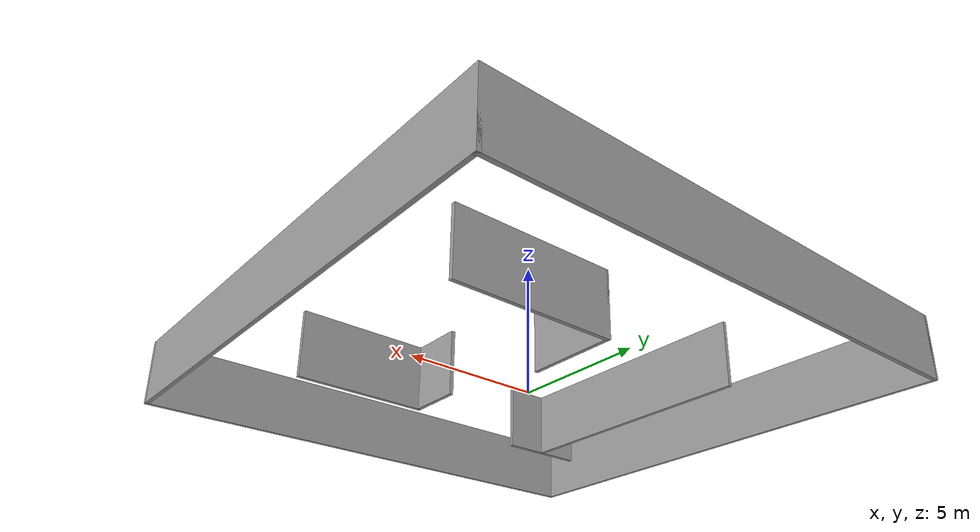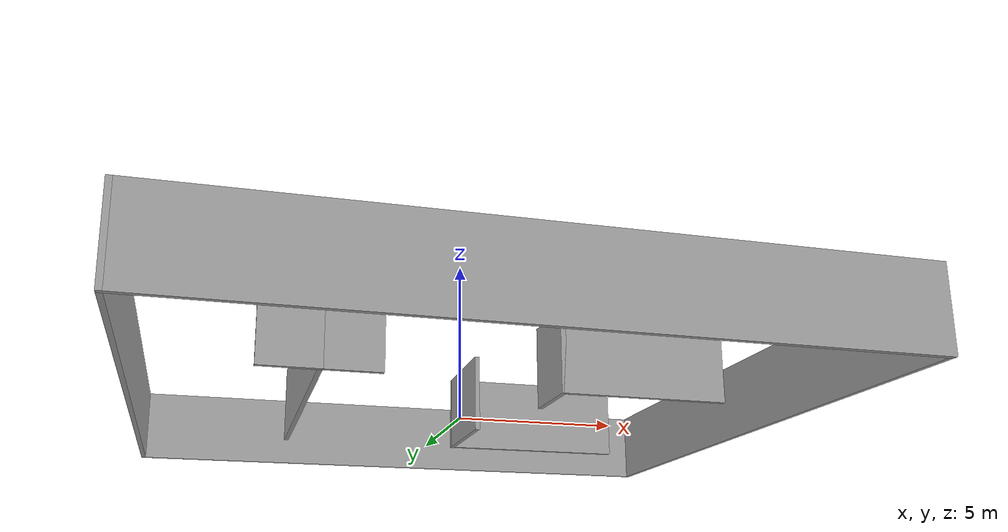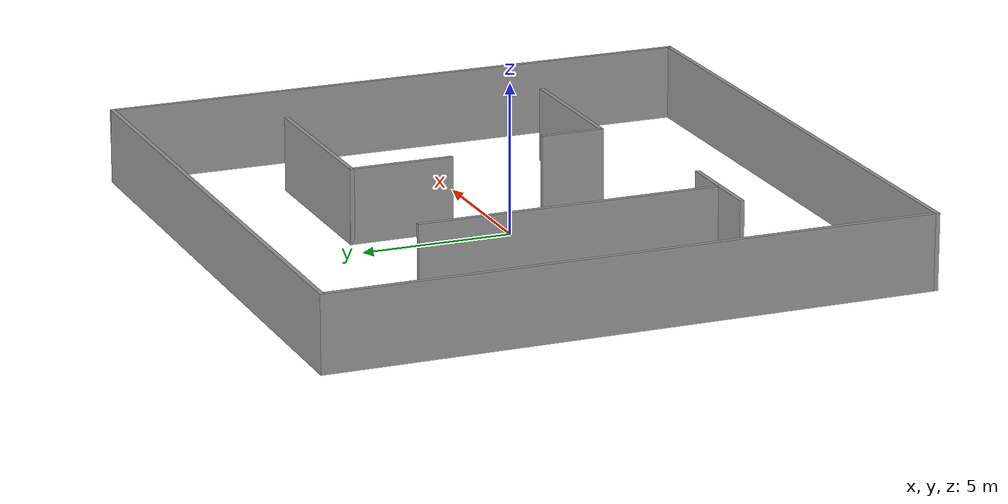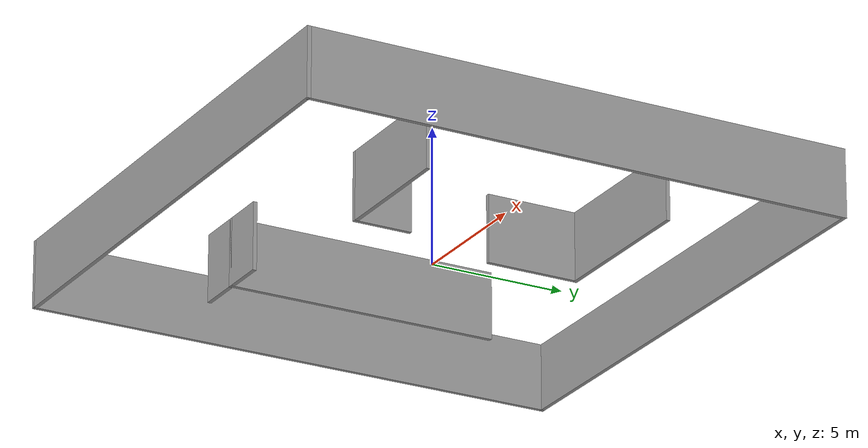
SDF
<?xml version='1.0'?>
<sdf version='1.7'>
  <model name='simple_maze'>
    <link name='Wall_0'>
      <pose>0 10 0 0 -0 0</pose>
      <self_collide>0</self_collide>
      <enable_wind>0</enable_wind>
      <kinematic>0</kinematic>
      <visual name='Wall_0_Visual'>
        <pose>0 0 1.25 0 -0 0</pose>
        <geometry>
          <box>
            <size>20.15 0.15 2.5</size>
          </box>
        </geometry>
        <material>
          <script>
            <uri>file://media/materials/scripts/gazebo.material</uri>
            <name>Gazebo/Grey</name>
          </script>
          <ambient>1 1 1 1</ambient>
          <shader type='pixel'/>
        </material>
        <meta>
          <layer>0</layer>
        </meta>
        <transparency>0</transparency>
        <cast_shadows>1</cast_shadows>
      </visual>
      <collision name='Wall_0_Collision'>
        <laser_retro>0</laser_retro>
        <max_contacts>10</max_contacts>
        <pose>0 0 1.25 0 -0 0</pose>
        <geometry>
          <box>
            <size>20.15 0.15 2.5</size>
          </box>
        </geometry>
        <surface>
          <friction>
            <ode>
              <mu>1</mu>
              <mu2>1</mu2>
              <fdir1>0 0 0</fdir1>
              <slip1>0</slip1>
              <slip2>0</slip2>
            </ode>
            <torsional>
              <coefficient>1</coefficient>
              <patch_radius>0</patch_radius>
              <surface_radius>0</surface_radius>
              <use_patch_radius>1</use_patch_radius>
              <ode>
                <slip>0</slip>
              </ode>
            </torsional>
          </friction>
          <bounce>
            <restitution_coefficient>0</restitution_coefficient>
            <threshold>1e+06</threshold>
          </bounce>
          <contact>
            <collide_without_contact>0</collide_without_contact>
            <collide_without_contact_bitmask>1</collide_without_contact_bitmask>
            <collide_bitmask>1</collide_bitmask>
            <ode>
              <soft_cfm>0</soft_cfm>
              <soft_erp>0.2</soft_erp>
              <kp>1e+13</kp>
              <kd>1</kd>
              <max_vel>0.01</max_vel>
              <min_depth>0</min_depth>
            </ode>
            <bullet>
              <split_impulse>1</split_impulse>
              <split_impulse_penetration_threshold>-0.01</split_impulse_penetration_threshold>
              <soft_cfm>0</soft_cfm>
              <soft_erp>0.2</soft_erp>
              <kp>1e+13</kp>
              <kd>1</kd>
            </bullet>
          </contact>
        </surface>
      </collision>
    </link>
    <link name='Wall_1'>
      <pose>10 0 0 0 0 -1.5708</pose>
      <self_collide>0</self_collide>
      <enable_wind>0</enable_wind>
      <kinematic>0</kinematic>
      <visual name='Wall_1_Visual'>
        <pose>0 0 1.25 0 -0 0</pose>
        <geometry>
          <box>
            <size>20.15 0.15 2.5</size>
          </box>
        </geometry>
        <material>
          <script>
            <uri>file://media/materials/scripts/gazebo.material</uri>
            <name>Gazebo/Grey</name>
          </script>
          <ambient>1 1 1 1</ambient>
          <shader type='pixel'/>
        </material>
        <meta>
          <layer>0</layer>
        </meta>
        <transparency>0</transparency>
        <cast_shadows>1</cast_shadows>
      </visual>
      <collision name='Wall_1_Collision'>
        <laser_retro>0</laser_retro>
        <max_contacts>10</max_contacts>
        <pose>0 0 1.25 0 -0 0</pose>
        <geometry>
          <box>
            <size>20.15 0.15 2.5</size>
          </box>
        </geometry>
        <surface>
          <friction>
            <ode>
              <mu>1</mu>
              <mu2>1</mu2>
              <fdir1>0 0 0</fdir1>
              <slip1>0</slip1>
              <slip2>0</slip2>
            </ode>
            <torsional>
              <coefficient>1</coefficient>
              <patch_radius>0</patch_radius>
              <surface_radius>0</surface_radius>
              <use_patch_radius>1</use_patch_radius>
              <ode>
                <slip>0</slip>
              </ode>
            </torsional>
          </friction>
          <bounce>
            <restitution_coefficient>0</restitution_coefficient>
            <threshold>1e+06</threshold>
          </bounce>
          <contact>
            <collide_without_contact>0</collide_without_contact>
            <collide_without_contact_bitmask>1</collide_without_contact_bitmask>
            <collide_bitmask>1</collide_bitmask>
            <ode>
              <soft_cfm>0</soft_cfm>
              <soft_erp>0.2</soft_erp>
              <kp>1e+13</kp>
              <kd>1</kd>
              <max_vel>0.01</max_vel>
              <min_depth>0</min_depth>
            </ode>
            <bullet>
              <split_impulse>1</split_impulse>
              <split_impulse_penetration_threshold>-0.01</split_impulse_penetration_threshold>
              <soft_cfm>0</soft_cfm>
              <soft_erp>0.2</soft_erp>
              <kp>1e+13</kp>
              <kd>1</kd>
            </bullet>
          </contact>
        </surface>
      </collision>
    </link>
    <link name='Wall_11'>
      <pose>4.5 -4 0 0 -0 0</pose>
      <self_collide>0</self_collide>
      <enable_wind>0</enable_wind>
      <kinematic>0</kinematic>
      <gravity>1</gravity>
      <inertial>
        <mass>1</mass>
        <pose>0 0 0 0 -0 0</pose>
        <inertia>
          <ixx>1</ixx>
          <ixy>0</ixy>
          <ixz>0</ixz>
          <iyy>1</iyy>
          <iyz>0</iyz>
          <izz>1</izz>
        </inertia>
      </inertial>
      <visual name='Wall_11_Visual'>
        <pose>0 0 1.25 0 -0 0</pose>
        <geometry>
          <box>
            <size>5 0.15 2.5</size>
          </box>
        </geometry>
        <material>
          <script>
            <uri>file://media/materials/scripts/gazebo.material</uri>
            <name>Gazebo/Grey</name>
          </script>
          <ambient>1 1 1 1</ambient>
          <shader type='pixel'>
            <normal_map>__default__</normal_map>
          </shader>
          <diffuse>0.7 0.7 0.7 1</diffuse>
          <specular>0.01 0.01 0.01 1</specular>
          <emissive>0 0 0 1</emissive>
        </material>
        <meta>
          <layer>0</layer>
        </meta>
        <transparency>0</transparency>
        <cast_shadows>1</cast_shadows>
      </visual>
      <collision name='Wall_11_Collision'>
        <laser_retro>0</laser_retro>
        <max_contacts>10</max_contacts>
        <pose>0 0 1.25 0 -0 0</pose>
        <geometry>
          <box>
            <size>5 0.15 2.5</size>
          </box>
        </geometry>
        <surface>
          <friction>
            <ode>
              <mu>1</mu>
              <mu2>1</mu2>
              <fdir1>0 0 0</fdir1>
              <slip1>0</slip1>
              <slip2>0</slip2>
            </ode>
            <torsional>
              <coefficient>1</coefficient>
              <patch_radius>0</patch_radius>
              <surface_radius>0</surface_radius>
              <use_patch_radius>1</use_patch_radius>
              <ode>
                <slip>0</slip>
              </ode>
            </torsional>
          </friction>
          <bounce>
            <restitution_coefficient>0</restitution_coefficient>
            <threshold>1e+06</threshold>
          </bounce>
          <contact>
            <collide_without_contact>0</collide_without_contact>
            <collide_without_contact_bitmask>1</collide_without_contact_bitmask>
            <collide_bitmask>1</collide_bitmask>
            <ode>
              <soft_cfm>0</soft_cfm>
              <soft_erp>0.2</soft_erp>
              <kp>1e+13</kp>
              <kd>1</kd>
              <max_vel>0.01</max_vel>
              <min_depth>0</min_depth>
            </ode>
            <bullet>
              <split_impulse>1</split_impulse>
              <split_impulse_penetration_threshold>-0.01</split_impulse_penetration_threshold>
              <soft_cfm>0</soft_cfm>
              <soft_erp>0.2</soft_erp>
              <kp>1e+13</kp>
              <kd>1</kd>
            </bullet>
          </contact>
        </surface>
      </collision>
    </link>
    <link name='Wall_13'>
      <pose>1 3.325 0 0 0 -1.5708</pose>
      <self_collide>0</self_collide>
      <enable_wind>0</enable_wind>
      <kinematic>0</kinematic>
      <visual name='Wall_13_Visual'>
        <pose>0 0 1.25 0 -0 0</pose>
        <geometry>
          <box>
            <size>3.5 0.15 2.5</size>
          </box>
        </geometry>
        <material>
          <script>
            <uri>file://media/materials/scripts/gazebo.material</uri>
            <name>Gazebo/Grey</name>
          </script>
          <ambient>1 1 1 1</ambient>
          <shader type='pixel'/>
        </material>
        <meta>
          <layer>0</layer>
        </meta>
        <transparency>0</transparency>
        <cast_shadows>1</cast_shadows>
      </visual>
      <collision name='Wall_13_Collision'>
        <laser_retro>0</laser_retro>
        <max_contacts>10</max_contacts>
        <pose>0 0 1.25 0 -0 0</pose>
        <geometry>
          <box>
            <size>3.5 0.15 2.5</size>
          </box>
        </geometry>
        <surface>
          <friction>
            <ode>
              <mu>1</mu>
              <mu2>1</mu2>
              <fdir1>0 0 0</fdir1>
              <slip1>0</slip1>
              <slip2>0</slip2>
            </ode>
            <torsional>
              <coefficient>1</coefficient>
              <patch_radius>0</patch_radius>
              <surface_radius>0</surface_radius>
              <use_patch_radius>1</use_patch_radius>
              <ode>
                <slip>0</slip>
              </ode>
            </torsional>
          </friction>
          <bounce>
            <restitution_coefficient>0</restitution_coefficient>
            <threshold>1e+06</threshold>
          </bounce>
          <contact>
            <collide_without_contact>0</collide_without_contact>
            <collide_without_contact_bitmask>1</collide_without_contact_bitmask>
            <collide_bitmask>1</collide_bitmask>
            <ode>
              <soft_cfm>0</soft_cfm>
              <soft_erp>0.2</soft_erp>
              <kp>1e+13</kp>
              <kd>1</kd>
              <max_vel>0.01</max_vel>
              <min_depth>0</min_depth>
            </ode>
            <bullet>
              <split_impulse>1</split_impulse>
              <split_impulse_penetration_threshold>-0.01</split_impulse_penetration_threshold>
              <soft_cfm>0</soft_cfm>
              <soft_erp>0.2</soft_erp>
              <kp>1e+13</kp>
              <kd>1</kd>
            </bullet>
          </contact>
        </surface>
      </collision>
    </link>
    <link name='Wall_15'>
      <pose>-4.2 -5 0 0 -0 0</pose>
      <self_collide>0</self_collide>
      <enable_wind>0</enable_wind>
      <kinematic>0</kinematic>
      <visual name='Wall_15_Visual'>
        <pose>0 0 1.25 0 -0 0</pose>
        <geometry>
          <box>
            <size>1.75 0.15 2.5</size>
          </box>
        </geometry>
        <material>
          <script>
            <uri>file://media/materials/scripts/gazebo.material</uri>
            <name>Gazebo/Grey</name>
          </script>
          <ambient>1 1 1 1</ambient>
          <shader type='pixel'/>
        </material>
        <meta>
          <layer>0</layer>
        </meta>
        <transparency>0</transparency>
        <cast_shadows>1</cast_shadows>
      </visual>
      <collision name='Wall_15_Collision'>
        <laser_retro>0</laser_retro>
        <max_contacts>10</max_contacts>
        <pose>0 0 1.25 0 -0 0</pose>
        <geometry>
          <box>
            <size>1.75 0.15 2.5</size>
          </box>
        </geometry>
        <surface>
          <friction>
            <ode>
              <mu>1</mu>
              <mu2>1</mu2>
              <fdir1>0 0 0</fdir1>
              <slip1>0</slip1>
              <slip2>0</slip2>
            </ode>
            <torsional>
              <coefficient>1</coefficient>
              <patch_radius>0</patch_radius>
              <surface_radius>0</surface_radius>
              <use_patch_radius>1</use_patch_radius>
              <ode>
                <slip>0</slip>
              </ode>
            </torsional>
          </friction>
          <bounce>
            <restitution_coefficient>0</restitution_coefficient>
            <threshold>1e+06</threshold>
          </bounce>
          <contact>
            <collide_without_contact>0</collide_without_contact>
            <collide_without_contact_bitmask>1</collide_without_contact_bitmask>
            <collide_bitmask>1</collide_bitmask>
            <ode>
              <soft_cfm>0</soft_cfm>
              <soft_erp>0.2</soft_erp>
              <kp>1e+13</kp>
              <kd>1</kd>
              <max_vel>0.01</max_vel>
              <min_depth>0</min_depth>
            </ode>
            <bullet>
              <split_impulse>1</split_impulse>
              <split_impulse_penetration_threshold>-0.01</split_impulse_penetration_threshold>
              <soft_cfm>0</soft_cfm>
              <soft_erp>0.2</soft_erp>
              <kp>1e+13</kp>
              <kd>1</kd>
            </bullet>
          </contact>
        </surface>
      </collision>
    </link>
    <link name='Wall_17'>
      <pose>-5.8 -5 0 0 -0 3.14159</pose>
      <self_collide>0</self_collide>
      <enable_wind>0</enable_wind>
      <kinematic>0</kinematic>
      <visual name='Wall_17_Visual'>
        <pose>0 0 1.25 0 -0 0</pose>
        <geometry>
          <box>
            <size>1.75 0.15 2.5</size>
          </box>
        </geometry>
        <material>
          <script>
            <uri>file://media/materials/scripts/gazebo.material</uri>
            <name>Gazebo/Grey</name>
          </script>
          <ambient>1 1 1 1</ambient>
          <shader type='pixel'/>
        </material>
        <meta>
          <layer>0</layer>
        </meta>
        <transparency>0</transparency>
        <cast_shadows>1</cast_shadows>
      </visual>
      <collision name='Wall_17_Collision'>
        <laser_retro>0</laser_retro>
        <max_contacts>10</max_contacts>
        <pose>0 0 1.25 0 -0 0</pose>
        <geometry>
          <box>
            <size>1.75 0.15 2.5</size>
          </box>
        </geometry>
        <surface>
          <friction>
            <ode>
              <mu>1</mu>
              <mu2>1</mu2>
              <fdir1>0 0 0</fdir1>
              <slip1>0</slip1>
              <slip2>0</slip2>
            </ode>
            <torsional>
              <coefficient>1</coefficient>
              <patch_radius>0</patch_radius>
              <surface_radius>0</surface_radius>
              <use_patch_radius>1</use_patch_radius>
              <ode>
                <slip>0</slip>
              </ode>
            </torsional>
          </friction>
          <bounce>
            <restitution_coefficient>0</restitution_coefficient>
            <threshold>1e+06</threshold>
          </bounce>
          <contact>
            <collide_without_contact>0</collide_without_contact>
            <collide_without_contact_bitmask>1</collide_without_contact_bitmask>
            <collide_bitmask>1</collide_bitmask>
            <ode>
              <soft_cfm>0</soft_cfm>
              <soft_erp>0.2</soft_erp>
              <kp>1e+13</kp>
              <kd>1</kd>
              <max_vel>0.01</max_vel>
              <min_depth>0</min_depth>
            </ode>
            <bullet>
              <split_impulse>1</split_impulse>
              <split_impulse_penetration_threshold>-0.01</split_impulse_penetration_threshold>
              <soft_cfm>0</soft_cfm>
              <soft_erp>0.2</soft_erp>
              <kp>1e+13</kp>
              <kd>1</kd>
            </bullet>
          </contact>
        </surface>
      </collision>
    </link>
    <link name='Wall_2'>
      <pose>0 -10 0 0 -0 3.14159</pose>
      <self_collide>0</self_collide>
      <enable_wind>0</enable_wind>
      <kinematic>0</kinematic>
      <visual name='Wall_2_Visual'>
        <pose>0 0 1.25 0 -0 0</pose>
        <geometry>
          <box>
            <size>20.15 0.15 2.5</size>
          </box>
        </geometry>
        <material>
          <script>
            <uri>file://media/materials/scripts/gazebo.material</uri>
            <name>Gazebo/Grey</name>
          </script>
          <ambient>1 1 1 1</ambient>
          <shader type='pixel'/>
        </material>
        <meta>
          <layer>0</layer>
        </meta>
        <transparency>0</transparency>
        <cast_shadows>1</cast_shadows>
      </visual>
      <collision name='Wall_2_Collision'>
        <laser_retro>0</laser_retro>
        <max_contacts>10</max_contacts>
        <pose>0 0 1.25 0 -0 0</pose>
        <geometry>
          <box>
            <size>20.15 0.15 2.5</size>
          </box>
        </geometry>
        <surface>
          <friction>
            <ode>
              <mu>1</mu>
              <mu2>1</mu2>
              <fdir1>0 0 0</fdir1>
              <slip1>0</slip1>
              <slip2>0</slip2>
            </ode>
            <torsional>
              <coefficient>1</coefficient>
              <patch_radius>0</patch_radius>
              <surface_radius>0</surface_radius>
              <use_patch_radius>1</use_patch_radius>
              <ode>
                <slip>0</slip>
              </ode>
            </torsional>
          </friction>
          <bounce>
            <restitution_coefficient>0</restitution_coefficient>
            <threshold>1e+06</threshold>
          </bounce>
          <contact>
            <collide_without_contact>0</collide_without_contact>
            <collide_without_contact_bitmask>1</collide_without_contact_bitmask>
            <collide_bitmask>1</collide_bitmask>
            <ode>
              <soft_cfm>0</soft_cfm>
              <soft_erp>0.2</soft_erp>
              <kp>1e+13</kp>
              <kd>1</kd>
              <max_vel>0.01</max_vel>
              <min_depth>0</min_depth>
            </ode>
            <bullet>
              <split_impulse>1</split_impulse>
              <split_impulse_penetration_threshold>-0.01</split_impulse_penetration_threshold>
              <soft_cfm>0</soft_cfm>
              <soft_erp>0.2</soft_erp>
              <kp>1e+13</kp>
              <kd>1</kd>
            </bullet>
          </contact>
        </surface>
      </collision>
    </link>
    <link name='Wall_3'>
      <pose>-10 0 0 0 -0 1.5708</pose>
      <self_collide>0</self_collide>
      <enable_wind>0</enable_wind>
      <kinematic>0</kinematic>
      <visual name='Wall_3_Visual'>
        <pose>0 0 1.25 0 -0 0</pose>
        <geometry>
          <box>
            <size>20.15 0.15 2.5</size>
          </box>
        </geometry>
        <material>
          <script>
            <uri>file://media/materials/scripts/gazebo.material</uri>
            <name>Gazebo/Grey</name>
          </script>
          <ambient>1 1 1 1</ambient>
          <shader type='pixel'/>
        </material>
        <meta>
          <layer>0</layer>
        </meta>
        <transparency>0</transparency>
        <cast_shadows>1</cast_shadows>
      </visual>
      <collision name='Wall_3_Collision'>
        <laser_retro>0</laser_retro>
        <max_contacts>10</max_contacts>
        <pose>0 0 1.25 0 -0 0</pose>
        <geometry>
          <box>
            <size>20.15 0.15 2.5</size>
          </box>
        </geometry>
        <surface>
          <friction>
            <ode>
              <mu>1</mu>
              <mu2>1</mu2>
              <fdir1>0 0 0</fdir1>
              <slip1>0</slip1>
              <slip2>0</slip2>
            </ode>
            <torsional>
              <coefficient>1</coefficient>
              <patch_radius>0</patch_radius>
              <surface_radius>0</surface_radius>
              <use_patch_radius>1</use_patch_radius>
              <ode>
                <slip>0</slip>
              </ode>
            </torsional>
          </friction>
          <bounce>
            <restitution_coefficient>0</restitution_coefficient>
            <threshold>1e+06</threshold>
          </bounce>
          <contact>
            <collide_without_contact>0</collide_without_contact>
            <collide_without_contact_bitmask>1</collide_without_contact_bitmask>
            <collide_bitmask>1</collide_bitmask>
            <ode>
              <soft_cfm>0</soft_cfm>
              <soft_erp>0.2</soft_erp>
              <kp>1e+13</kp>
              <kd>1</kd>
              <max_vel>0.01</max_vel>
              <min_depth>0</min_depth>
            </ode>
            <bullet>
              <split_impulse>1</split_impulse>
              <split_impulse_penetration_threshold>-0.01</split_impulse_penetration_threshold>
              <soft_cfm>0</soft_cfm>
              <soft_erp>0.2</soft_erp>
              <kp>1e+13</kp>
              <kd>1</kd>
            </bullet>
          </contact>
        </surface>
      </collision>
    </link>
    <link name='Wall_5'>
      <pose>-5 0 0 0 0 -1.5708</pose>
      <self_collide>0</self_collide>
      <enable_wind>0</enable_wind>
      <kinematic>0</kinematic>
      <visual name='Wall_5_Visual'>
        <pose>0 0 1.25 0 -0 0</pose>
        <geometry>
          <box>
            <size>10.15 0.15 2.5</size>
          </box>
        </geometry>
        <material>
          <script>
            <uri>file://media/materials/scripts/gazebo.material</uri>
            <name>Gazebo/Grey</name>
          </script>
          <ambient>1 1 1 1</ambient>
          <shader type='pixel'/>
        </material>
        <meta>
          <layer>0</layer>
        </meta>
        <transparency>0</transparency>
        <cast_shadows>1</cast_shadows>
      </visual>
      <collision name='Wall_5_Collision'>
        <laser_retro>0</laser_retro>
        <max_contacts>10</max_contacts>
        <pose>0 0 1.25 0 -0 0</pose>
        <geometry>
          <box>
            <size>10.15 0.15 2.5</size>
          </box>
        </geometry>
        <surface>
          <friction>
            <ode>
              <mu>1</mu>
              <mu2>1</mu2>
              <fdir1>0 0 0</fdir1>
              <slip1>0</slip1>
              <slip2>0</slip2>
            </ode>
            <torsional>
              <coefficient>1</coefficient>
              <patch_radius>0</patch_radius>
              <surface_radius>0</surface_radius>
              <use_patch_radius>1</use_patch_radius>
              <ode>
                <slip>0</slip>
              </ode>
            </torsional>
          </friction>
          <bounce>
            <restitution_coefficient>0</restitution_coefficient>
            <threshold>1e+06</threshold>
          </bounce>
          <contact>
            <collide_without_contact>0</collide_without_contact>
            <collide_without_contact_bitmask>1</collide_without_contact_bitmask>
            <collide_bitmask>1</collide_bitmask>
            <ode>
              <soft_cfm>0</soft_cfm>
              <soft_erp>0.2</soft_erp>
              <kp>1e+13</kp>
              <kd>1</kd>
              <max_vel>0.01</max_vel>
              <min_depth>0</min_depth>
            </ode>
            <bullet>
              <split_impulse>1</split_impulse>
              <split_impulse_penetration_threshold>-0.01</split_impulse_penetration_threshold>
              <soft_cfm>0</soft_cfm>
              <soft_erp>0.2</soft_erp>
              <kp>1e+13</kp>
              <kd>1</kd>
            </bullet>
          </contact>
        </surface>
      </collision>
    </link>
    <link name='Wall_7'>
      <pose>4 5 0 0 -0 0</pose>
      <self_collide>0</self_collide>
      <enable_wind>0</enable_wind>
      <kinematic>0</kinematic>
      <visual name='Wall_7_Visual'>
        <pose>0 0 1.25 0 -0 0</pose>
        <geometry>
          <box>
            <size>6.15 0.15 2.5</size>
          </box>
        </geometry>
        <material>
          <script>
            <uri>file://media/materials/scripts/gazebo.material</uri>
            <name>Gazebo/Grey</name>
          </script>
          <ambient>1 1 1 1</ambient>
          <shader type='pixel'/>
        </material>
        <meta>
          <layer>0</layer>
        </meta>
        <transparency>0</transparency>
        <cast_shadows>1</cast_shadows>
      </visual>
      <collision name='Wall_7_Collision'>
        <laser_retro>0</laser_retro>
        <max_contacts>10</max_contacts>
        <pose>0 0 1.25 0 -0 0</pose>
        <geometry>
          <box>
            <size>6.15 0.15 2.5</size>
          </box>
        </geometry>
        <surface>
          <friction>
            <ode>
              <mu>1</mu>
              <mu2>1</mu2>
              <fdir1>0 0 0</fdir1>
              <slip1>0</slip1>
              <slip2>0</slip2>
            </ode>
            <torsional>
              <coefficient>1</coefficient>
              <patch_radius>0</patch_radius>
              <surface_radius>0</surface_radius>
              <use_patch_radius>1</use_patch_radius>
              <ode>
                <slip>0</slip>
              </ode>
            </torsional>
          </friction>
          <bounce>
            <restitution_coefficient>0</restitution_coefficient>
            <threshold>1e+06</threshold>
          </bounce>
          <contact>
            <collide_without_contact>0</collide_without_contact>
            <collide_without_contact_bitmask>1</collide_without_contact_bitmask>
            <collide_bitmask>1</collide_bitmask>
            <ode>
              <soft_cfm>0</soft_cfm>
              <soft_erp>0.2</soft_erp>
              <kp>1e+13</kp>
              <kd>1</kd>
              <max_vel>0.01</max_vel>
              <min_depth>0</min_depth>
            </ode>
            <bullet>
              <split_impulse>1</split_impulse>
              <split_impulse_penetration_threshold>-0.01</split_impulse_penetration_threshold>
              <soft_cfm>0</soft_cfm>
              <soft_erp>0.2</soft_erp>
              <kp>1e+13</kp>
              <kd>1</kd>
            </bullet>
          </contact>
        </surface>
      </collision>
    </link>
    <link name='Wall_9'>
      <pose>2.01 -3 0 0 0 -1.5708</pose>
      <self_collide>0</self_collide>
      <enable_wind>0</enable_wind>
      <kinematic>0</kinematic>
      <visual name='Wall_9_Visual'>
        <pose>0 0 1.25 0 -0 0</pose>
        <geometry>
          <box>
            <size>2.15 0.15 2.5</size>
          </box>
        </geometry>
        <material>
          <script>
            <uri>file://media/materials/scripts/gazebo.material</uri>
            <name>Gazebo/Grey</name>
          </script>
          <ambient>1 1 1 1</ambient>
          <shader type='pixel'/>
        </material>
        <meta>
          <layer>0</layer>
        </meta>
        <transparency>0</transparency>
        <cast_shadows>1</cast_shadows>
      </visual>
      <collision name='Wall_9_Collision'>
        <laser_retro>0</laser_retro>
        <max_contacts>10</max_contacts>
        <pose>0 0 1.25 0 -0 0</pose>
        <geometry>
          <box>
            <size>2.15 0.15 2.5</size>
          </box>
        </geometry>
        <surface>
          <friction>
            <ode>
              <mu>1</mu>
              <mu2>1</mu2>
              <fdir1>0 0 0</fdir1>
              <slip1>0</slip1>
              <slip2>0</slip2>
            </ode>
            <torsional>
              <coefficient>1</coefficient>
              <patch_radius>0</patch_radius>
              <surface_radius>0</surface_radius>
              <use_patch_radius>1</use_patch_radius>
              <ode>
                <slip>0</slip>
              </ode>
            </torsional>
          </friction>
          <bounce>
            <restitution_coefficient>0</restitution_coefficient>
            <threshold>1e+06</threshold>
          </bounce>
          <contact>
            <collide_without_contact>0</collide_without_contact>
            <collide_without_contact_bitmask>1</collide_without_contact_bitmask>
            <collide_bitmask>1</collide_bitmask>
            <ode>
              <soft_cfm>0</soft_cfm>
              <soft_erp>0.2</soft_erp>
              <kp>1e+13</kp>
              <kd>1</kd>
              <max_vel>0.01</max_vel>
              <min_depth>0</min_depth>
            </ode>
            <bullet>
              <split_impulse>1</split_impulse>
              <split_impulse_penetration_threshold>-0.01</split_impulse_penetration_threshold>
              <soft_cfm>0</soft_cfm>
              <soft_erp>0.2</soft_erp>
              <kp>1e+13</kp>
              <kd>1</kd>
            </bullet>
          </contact>
        </surface>
      </collision>
    </link>
    <static>1</static>
    <allow_auto_disable>1</allow_auto_disable>
  </model>
</sdf>
